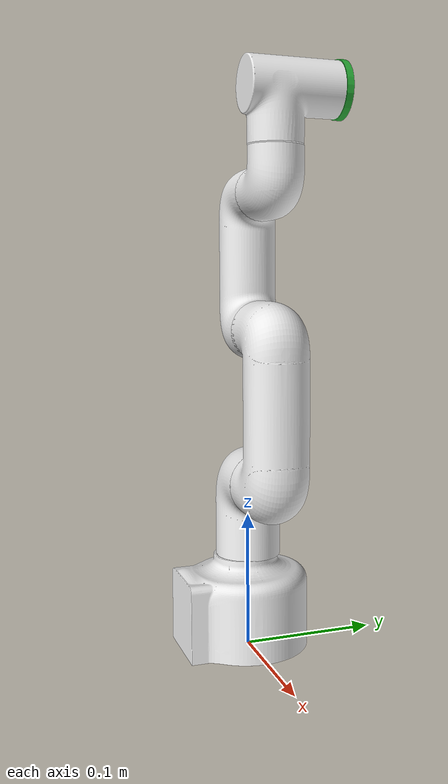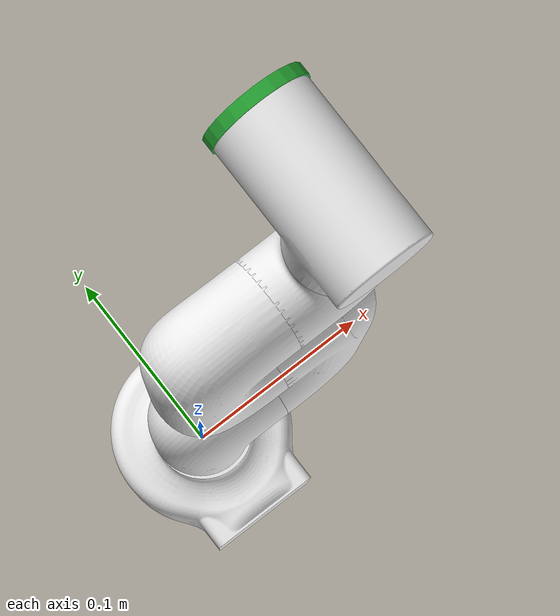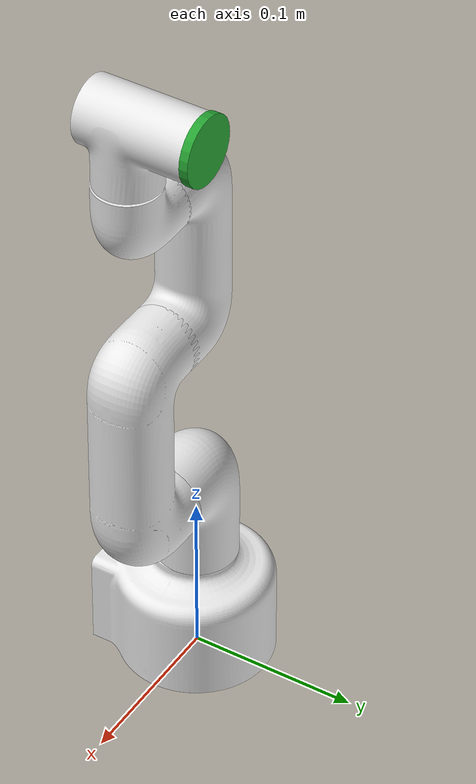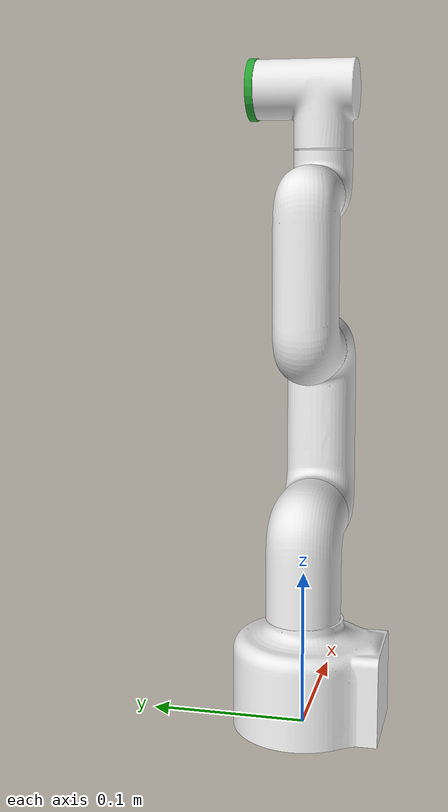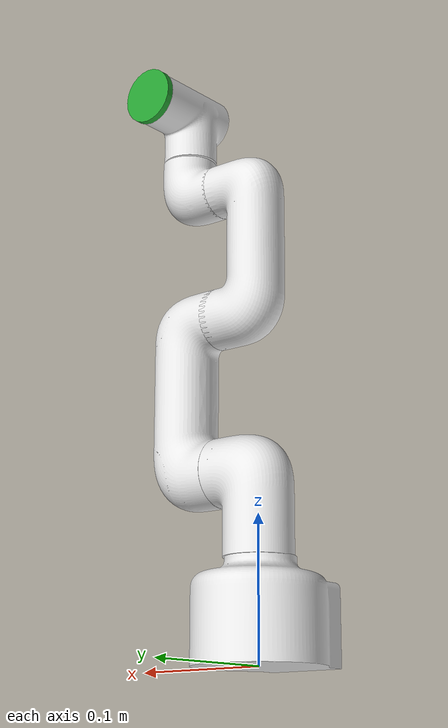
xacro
<?xml version="1.0"?>
<robot  xmlns:xacro="http://www.ros.org/wiki/xacro" name="mycobot" >
  <xacro:property name="width" value=".2" />
  <xacro:include filename="$(find mycobot_description)/urdf/color.xacro" />

  <link name="world"/>

  <joint name="origin" type="fixed">
    <parent link="world"/>
    <child link="base_link"/>
  </joint>
  <!-- body joint & link -->

  <link name="base_link">
    <collision>
      <origin xyz = "0.0 0 0 " rpy = " 0 0 0"/>
      <geometry>
          <mesh filename="package://mycobot_description/meshes/stl/visual/link1.stl" />
      </geometry>
    </collision>
    <visual>
      <origin xyz = "0.0 0 0 " rpy = " 0 0 0"/>
      <geometry>
          <mesh filename="package://mycobot_description/meshes/stl/visual/link1.stl" />
      </geometry>
      <material name="white"/>
    </visual>
    <inertial>
      <origin rpy="0 0 0" xyz="0 0 0.075"/>
      <mass value="5"/>
      <inertia ixx="1.0" ixy="0.0" ixz="0.0" iyy="1.0" iyz="0.0" izz="1.0"/>
    </inertial>
  </link>

  <!-- arm1 joint & link -->
  <joint name="joint1" type="revolute">
    <parent link="base_link"/>
    <child link="link1"/>
    <origin xyz= "0 0 0.0706" rpy = "0 0 0"/>
    <axis xyz="0 0 1"/>
    <limit effort="30" lower="-2.88" upper="2.88" velocity="1.5"/>
  </joint>

  <link name="link1">
    <collision>
      <origin xyz = "0.0 0 0 " rpy = " 0 0 0"/>
      <geometry>
          <mesh filename="package://mycobot_description/meshes/stl/visual/link2.stl" />
      </geometry>
    </collision>
    <visual>
      <origin xyz = "0.0 0 0 " rpy = " 0 0 0"/>
      <geometry>
          <mesh filename="package://mycobot_description/meshes/stl/visual/link2.stl" />
      </geometry>
      <material name="white"/>
    </visual>
    <inertial>
      <origin rpy="0 0 0" xyz="0 0 0.075"/>
      <mass value="0.1"/>
      <inertia ixx="0.01" ixy="0.0" ixz="0.0" iyy="0.01" iyz="0.0" izz="0.01"/>
    </inertial>
  </link>

  <!-- arm2 joint & link -->
  <joint name="joint2" type="revolute">
    <parent link="link1"/>
    <child link="link2"/>
    <origin xyz= "0.03256 0  0.05976" rpy = "0 0 0"/>
    <axis xyz="1 0 0"/>
    <limit effort="30" lower="-2.88" upper="2.88" velocity="1.5"/>
  </joint>

  <link name="link2">
    <collision>
      <origin xyz = "0.0 0 0 " rpy = " 0 0 0"/>
      <geometry>
          <mesh filename="package://mycobot_description/meshes/stl/visual/link3.stl" />
      </geometry>
    </collision>
    <visual>
      <origin xyz = "0.0 0 0 " rpy = " 0 0 0"/>
      <geometry>
          <mesh filename="package://mycobot_description/meshes/stl/visual/link3.stl" />
      </geometry>
      <material name="white"/>
    </visual>
    <inertial>
      <origin rpy="0 0 0" xyz="0 0 0.06"/>
      <mass value="0.1"/>
      <inertia ixx="0.01" ixy="0.0" ixz="0.0" iyy="0.01" iyz="0.0" izz="0.01"/>
    </inertial>
  </link>

  <!-- arm3 joint & link -->
  <joint name="joint3" type="revolute">
    <parent link="link2"/>
    <child link="link3"/>
    <origin xyz="0.00272 0 0.1104" rpy="0 0 0"/>
    <axis xyz="1 0 0"/>
    <limit effort="30" lower="-2.88" upper="2.88" velocity="1.5"/>
  </joint>

  <link name="link3">
    <collision>
      <origin xyz = "0.0 0 0" rpy = "0 0 0"/>
      <geometry>
          <mesh filename="package://mycobot_description/meshes/stl/visual/link4.stl" />
      </geometry>
    </collision>
    <visual>
      <origin xyz = "0.0 0 0" rpy = "0 0 0"/>
      <geometry>
          <mesh filename="package://mycobot_description/meshes/stl/visual/link4.stl" />
      </geometry>
      <material name="white"/>
    </visual>
    <inertial>
      <origin rpy="0 0 0" xyz="0 0 0.06"/>
      <mass value="0.1"/>
      <inertia ixx="0.01" ixy="0.0" ixz="0.0" iyy="0.01" iyz="0.0" izz="0.01"/>
    </inertial>
  </link>

  <!-- arm4 joint & link -->
  <joint name="joint4" type="revolute">
    <parent link="link3"/>
    <child link="link4"/>
    <origin xyz= "-0.00164 0 0.096" rpy = "0 0 0"/>
    <axis xyz="1 0 0"/>
    <limit effort = "1000.0" lower = "-2.88" upper = "2.88" velocity = "0"/>
  </joint>

  <link name="link4">
    <collision>
      <origin xyz="0.0 0 0" rpy="0 0 0"/>
      <geometry>
          <mesh filename="package://mycobot_description/meshes/stl/visual/link5.stl" />
      </geometry>
    </collision>
    <visual>
      <origin xyz="0.0 0 0" rpy="0 0 0"/>
      <geometry>
          <mesh filename="package://mycobot_description/meshes/stl/visual/link5.stl" />
      </geometry>
      <material name="white"/>
    </visual>
    <inertial>
      <origin rpy="0 0 0" xyz="0 0 0.06"/>
      <mass value="0.1"/>
      <inertia ixx="0.01" ixy="0.0" ixz="0.0" iyy="0.01" iyz="0.0" izz="0.01"/>
    </inertial>
  </link>

  <!-- arm5 joint & link -->
  <joint name="joint5" type="revolute">
    <parent link="link4"/>
    <child link="link5"/>
    <origin xyz= "0.0288 0 0.02976" rpy = "0 0 0"/>
    <axis xyz="0 0 1"/>
    <limit effort="30" lower="-2.88" upper="2.88" velocity="1.5"/>
  </joint>

  <link name="link5">
    <collision>
      <origin xyz="0.0 0 0" rpy="0 0 0"/>
      <geometry>
          <mesh filename="package://mycobot_description/meshes/stl/visual/link6.stl" />
      </geometry>
    </collision>
    <visual>
      <origin xyz="0.0 0 0" rpy="0 0 0"/>
      <geometry>
          <mesh filename="package://mycobot_description/meshes/stl/visual/link6.stl" />
      </geometry>
      <material name="white"/>
    </visual>
    <inertial>
      <origin rpy="0 0 0" xyz="0 0 0.06"/>
      <mass value="0.1"/>
      <inertia ixx="0.01" ixy="0.0" ixz="0.0" iyy="0.01" iyz="0.0" izz="0.01"/>
    </inertial>
  </link>

  <!-- arm6 joint & link -->
  <joint name="joint6" type="revolute">
    <parent link="link5"/>
    <child link="link6"/>
    <origin xyz="0 0.0456 0.03792" rpy="0 0 0"/>
    <axis xyz="0 1 0"/>
    <limit effort="30" lower="-3.05" upper="3.05" velocity="1.5"/>
  </joint>

  <link name="link6">
    <collision>
      <origin xyz="0.0 0 0" rpy="1.57075 0 0"/>
      <geometry>
        <cylinder length="0.005" radius="0.02"/>
      </geometry>
    </collision>
    <visual>
      <origin xyz="0.0 0 0" rpy="1.57075 0 0"/>
      <geometry>
        <cylinder length="0.005" radius="0.02"/>
      </geometry>
      <material name="green"/>
    </visual>
    <inertial>
      <origin rpy="0 0 0" xyz="0 0 0.06"/>
      <mass value="0.1"/>
      <inertia ixx="0.01" ixy="0.0" ixz="0.0" iyy="0.01" iyz="0.0" izz="0.01"/>
    </inertial>
  </link>

</robot>
